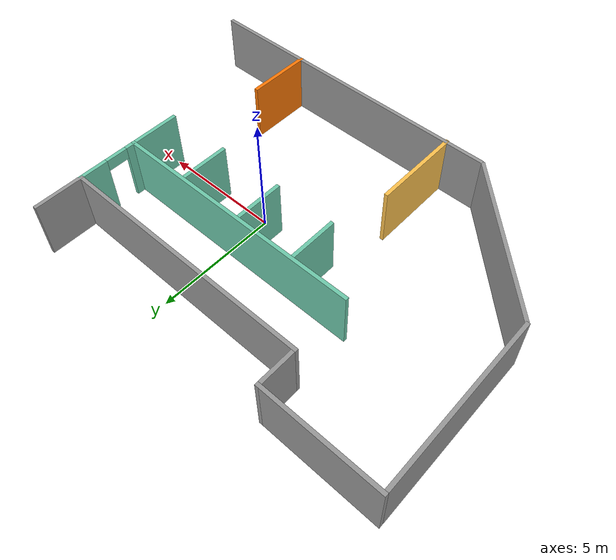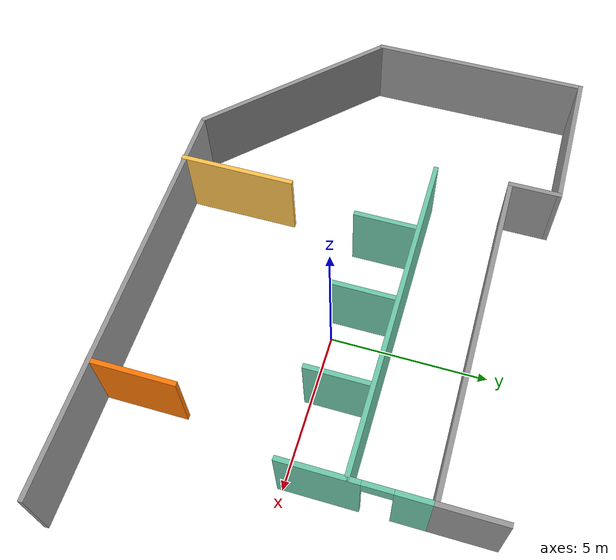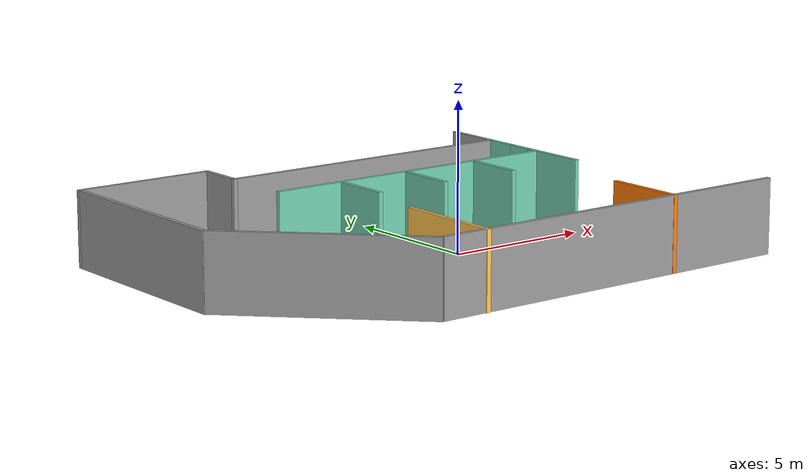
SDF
<sdf version="1.6">
 <model name="Building">
  <link name="Wall_11">
   <pose>1.2 -6.05 0 0 -0 0</pose>
   <inertial>
    <mass>1</mass>
    <inertia><ixx>1</ixx><ixy>0</ixy><ixz>0</ixz><iyy>1</iyy><iyz>0</iyz><izz>1</izz></inertia>
   </inertial>
   <visual name="Wall_11_Visual">
    <pose>0 0 1.25 0 -0 0</pose>
    <geometry><box><size>13.3 0.15 2.5</size></box></geometry>
    <material>
     <script><uri>file://media/materials/scripts/gazebo.material</uri><name>Gazebo/Grey</name></script>
     <ambient>1 1 1 1</ambient>
     <shader type="pixel"><normal_map>__default__</normal_map></shader>
     <diffuse>0.7 0.7 0.7 1</diffuse>
     <specular>0.01 0.01 0.01 1</specular>
     <emissive>0 0 0 1</emissive>
    </material>
    <meta><layer>0</layer></meta>
   </visual>
   <collision name="Wall_11_Collision">
    <pose>0 0 1.25 0 -0 0</pose>
    <geometry><box><size>13.3 0.15 2.5</size></box></geometry>
    <surface>
     <friction>
      <ode><mu>1</mu><mu2>1</mu2><fdir1>0 0 0</fdir1><slip1>0</slip1><slip2>0</slip2></ode>
      <torsional>
       <coefficient>1</coefficient>
       <patch_radius>0</patch_radius>
       <surface_radius>0</surface_radius>
       <use_patch_radius>1</use_patch_radius>
       <ode><slip>0</slip></ode>
      </torsional>
     </friction>
     <bounce><restitution_coefficient>0</restitution_coefficient><threshold>1e+06</threshold></bounce>
     <contact>
      <collide_without_contact>0</collide_without_contact>
      <collide_without_contact_bitmask>1</collide_without_contact_bitmask>
      <collide_bitmask>1</collide_bitmask>
      <ode>
       <soft_cfm>0</soft_cfm>
       <soft_erp>0.2</soft_erp>
       <kp>1e+13</kp>
       <kd>1</kd>
       <max_vel>0.01</max_vel>
       <min_depth>0</min_depth>
      </ode>
      <bullet>
       <split_impulse>1</split_impulse>
       <split_impulse_penetration_threshold>-0.01</split_impulse_penetration_threshold>
       <soft_cfm>0</soft_cfm>
       <soft_erp>0.2</soft_erp>
       <kp>1e+13</kp>
       <kd>1</kd>
      </bullet>
     </contact>
    </surface>
   </collision>
  </link>
  <link name="Wall_133">
   <pose>-3.81217 -4.27997 0 0 0 -1.5708</pose>
   <visual name="Wall_133_Visual">
    <pose>0 0 1.25 0 -0 0</pose>
    <geometry><box><size>3.75 0.15 2.5</size></box></geometry>
    <material>
     <script><uri>file://media/materials/scripts/gazebo.material</uri><name>Gazebo/Grey</name></script>
     <ambient>1 0.764706 0.305882 1</ambient>
     <shader type="pixel"/>
     <diffuse>0.7 0.7 0.7 1</diffuse>
     <specular>0.01 0.01 0.01 1</specular>
     <emissive>0 0 0 1</emissive>
    </material>
    <meta><layer>0</layer></meta>
   </visual>
   <collision name="Wall_133_Collision">
    <pose>0 0 1.25 0 -0 0</pose>
    <geometry><box><size>3.75 0.15 2.5</size></box></geometry>
    <surface>
     <friction>
      <ode><mu>1</mu><mu2>1</mu2><fdir1>0 0 0</fdir1><slip1>0</slip1><slip2>0</slip2></ode>
      <torsional>
       <coefficient>1</coefficient>
       <patch_radius>0</patch_radius>
       <surface_radius>0</surface_radius>
       <use_patch_radius>1</use_patch_radius>
       <ode><slip>0</slip></ode>
      </torsional>
     </friction>
     <bounce><restitution_coefficient>0</restitution_coefficient><threshold>1e+06</threshold></bounce>
     <contact>
      <collide_without_contact>0</collide_without_contact>
      <collide_without_contact_bitmask>1</collide_without_contact_bitmask>
      <collide_bitmask>1</collide_bitmask>
      <ode>
       <soft_cfm>0</soft_cfm>
       <soft_erp>0.2</soft_erp>
       <kp>1e+13</kp>
       <kd>1</kd>
       <max_vel>0.01</max_vel>
       <min_depth>0</min_depth>
      </ode>
      <bullet>
       <split_impulse>1</split_impulse>
       <split_impulse_penetration_threshold>-0.01</split_impulse_penetration_threshold>
       <soft_cfm>0</soft_cfm>
       <soft_erp>0.2</soft_erp>
       <kp>1e+13</kp>
       <kd>1</kd>
      </bullet>
     </contact>
    </surface>
   </collision>
  </link>
  <link name="Wall_145">
   <pose>3.67485 -4.757 0 0 0 -1.5708</pose>
   <visual name="Wall_145_Visual">
    <pose>0 0 1.25 0 -0 0</pose>
    <geometry><box><size>2.75 0.15 2.5</size></box></geometry>
    <material>
     <script><uri>file://media/materials/scripts/gazebo.material</uri><name>Gazebo/Grey</name></script>
     <ambient>0.996078 0.47451 0.0196078 1</ambient>
     <shader type="pixel"/>
     <diffuse>0.7 0.7 0.7 1</diffuse>
     <specular>0.01 0.01 0.01 1</specular>
     <emissive>0 0 0 1</emissive>
    </material>
    <meta><layer>0</layer></meta>
   </visual>
   <collision name="Wall_145_Collision">
    <pose>0 0 1.25 0 -0 0</pose>
    <geometry><box><size>2.75 0.15 2.5</size></box></geometry>
    <surface>
     <friction>
      <ode><mu>1</mu><mu2>1</mu2><fdir1>0 0 0</fdir1><slip1>0</slip1><slip2>0</slip2></ode>
      <torsional>
       <coefficient>1</coefficient>
       <patch_radius>0</patch_radius>
       <surface_radius>0</surface_radius>
       <use_patch_radius>1</use_patch_radius>
       <ode><slip>0</slip></ode>
      </torsional>
     </friction>
     <bounce><restitution_coefficient>0</restitution_coefficient><threshold>1e+06</threshold></bounce>
     <contact>
      <collide_without_contact>0</collide_without_contact>
      <collide_without_contact_bitmask>1</collide_without_contact_bitmask>
      <collide_bitmask>1</collide_bitmask>
      <ode>
       <soft_cfm>0</soft_cfm>
       <soft_erp>0.2</soft_erp>
       <kp>1e+13</kp>
       <kd>1</kd>
       <max_vel>0.01</max_vel>
       <min_depth>0</min_depth>
      </ode>
      <bullet>
       <split_impulse>1</split_impulse>
       <split_impulse_penetration_threshold>-0.01</split_impulse_penetration_threshold>
       <soft_cfm>0</soft_cfm>
       <soft_erp>0.2</soft_erp>
       <kp>1e+13</kp>
       <kd>1</kd>
      </bullet>
     </contact>
    </surface>
   </collision>
  </link>
  <link name="Wall_16">
   <pose>4.92485 5.2565 0 0 0 -1.5708</pose>
   <visual name="Wall_16_Visual">
    <pose>0 0 1.25 0 -0 0</pose>
    <geometry><box><size>2.06053 0.15 2.5</size></box></geometry>
    <material>
     <script><uri>file://media/materials/scripts/gazebo.material</uri><name>Gazebo/Grey</name></script>
     <ambient>1 1 1 1</ambient>
     <shader type="pixel"/>
     <diffuse>0.7 0.7 0.7 1</diffuse>
     <specular>0.01 0.01 0.01 1</specular>
     <emissive>0 0 0 1</emissive>
    </material>
    <meta><layer>0</layer></meta>
   </visual>
   <collision name="Wall_16_Collision">
    <pose>0 0 1.25 0 -0 0</pose>
    <geometry><box><size>2.06053 0.15 2.5</size></box></geometry>
    <surface>
     <friction>
      <ode><mu>1</mu><mu2>1</mu2><fdir1>0 0 0</fdir1><slip1>0</slip1><slip2>0</slip2></ode>
      <torsional>
       <coefficient>1</coefficient>
       <patch_radius>0</patch_radius>
       <surface_radius>0</surface_radius>
       <use_patch_radius>1</use_patch_radius>
       <ode><slip>0</slip></ode>
      </torsional>
     </friction>
     <bounce><restitution_coefficient>0</restitution_coefficient><threshold>1e+06</threshold></bounce>
     <contact>
      <collide_without_contact>0</collide_without_contact>
      <collide_without_contact_bitmask>1</collide_without_contact_bitmask>
      <collide_bitmask>1</collide_bitmask>
      <ode>
       <soft_cfm>0</soft_cfm>
       <soft_erp>0.2</soft_erp>
       <kp>1e+13</kp>
       <kd>1</kd>
       <max_vel>0.01</max_vel>
       <min_depth>0</min_depth>
      </ode>
      <bullet>
       <split_impulse>1</split_impulse>
       <split_impulse_penetration_threshold>-0.01</split_impulse_penetration_threshold>
       <soft_cfm>0</soft_cfm>
       <soft_erp>0.2</soft_erp>
       <kp>1e+13</kp>
       <kd>1</kd>
      </bullet>
     </contact>
    </surface>
   </collision>
  </link>
  <link name="Wall_17">
   <pose>-0.375154 4.301 0 0 -0 3.14159</pose>
   <visual name="Wall_17_Visual">
    <pose>0 0 1.25 0 -0 0</pose>
    <geometry><box><size>10.75 0.15 2.5</size></box></geometry>
    <material>
     <script><uri>file://media/materials/scripts/gazebo.material</uri><name>Gazebo/Grey</name></script>
     <ambient>1 1 1 1</ambient>
     <shader type="pixel"/>
     <diffuse>0.7 0.7 0.7 1</diffuse>
     <specular>0.01 0.01 0.01 1</specular>
     <emissive>0 0 0 1</emissive>
    </material>
    <meta><layer>0</layer></meta>
   </visual>
   <collision name="Wall_17_Collision">
    <pose>0 0 1.25 0 -0 0</pose>
    <geometry><box><size>10.75 0.15 2.5</size></box></geometry>
    <surface>
     <friction>
      <ode><mu>1</mu><mu2>1</mu2><fdir1>0 0 0</fdir1><slip1>0</slip1><slip2>0</slip2></ode>
      <torsional>
       <coefficient>1</coefficient>
       <patch_radius>0</patch_radius>
       <surface_radius>0</surface_radius>
       <use_patch_radius>1</use_patch_radius>
       <ode><slip>0</slip></ode>
      </torsional>
     </friction>
     <bounce><restitution_coefficient>0</restitution_coefficient><threshold>1e+06</threshold></bounce>
     <contact>
      <collide_without_contact>0</collide_without_contact>
      <collide_without_contact_bitmask>1</collide_without_contact_bitmask>
      <collide_bitmask>1</collide_bitmask>
      <ode>
       <soft_cfm>0</soft_cfm>
       <soft_erp>0.2</soft_erp>
       <kp>1e+13</kp>
       <kd>1</kd>
       <max_vel>0.01</max_vel>
       <min_depth>0</min_depth>
      </ode>
      <bullet>
       <split_impulse>1</split_impulse>
       <split_impulse_penetration_threshold>-0.01</split_impulse_penetration_threshold>
       <soft_cfm>0</soft_cfm>
       <soft_erp>0.2</soft_erp>
       <kp>1e+13</kp>
       <kd>1</kd>
      </bullet>
     </contact>
    </surface>
   </collision>
  </link>
  <link name="Wall_18">
   <pose>-5.67515 5.0855 0 0 -0 1.5708</pose>
   <visual name="Wall_18_Visual">
    <pose>0 0 1.25 0 -0 0</pose>
    <geometry><box><size>1.719 0.15 2.5</size></box></geometry>
    <material>
     <script><uri>file://media/materials/scripts/gazebo.material</uri><name>Gazebo/Grey</name></script>
     <ambient>1 1 1 1</ambient>
     <shader type="pixel"/>
     <diffuse>0.7 0.7 0.7 1</diffuse>
     <specular>0.01 0.01 0.01 1</specular>
     <emissive>0 0 0 1</emissive>
    </material>
    <meta><layer>0</layer></meta>
   </visual>
   <collision name="Wall_18_Collision">
    <pose>0 0 1.25 0 -0 0</pose>
    <geometry><box><size>1.719 0.15 2.5</size></box></geometry>
    <surface>
     <friction>
      <ode><mu>1</mu><mu2>1</mu2><fdir1>0 0 0</fdir1><slip1>0</slip1><slip2>0</slip2></ode>
      <torsional>
       <coefficient>1</coefficient>
       <patch_radius>0</patch_radius>
       <surface_radius>0</surface_radius>
       <use_patch_radius>1</use_patch_radius>
       <ode><slip>0</slip></ode>
      </torsional>
     </friction>
     <bounce><restitution_coefficient>0</restitution_coefficient><threshold>1e+06</threshold></bounce>
     <contact>
      <collide_without_contact>0</collide_without_contact>
      <collide_without_contact_bitmask>1</collide_without_contact_bitmask>
      <collide_bitmask>1</collide_bitmask>
      <ode>
       <soft_cfm>0</soft_cfm>
       <soft_erp>0.2</soft_erp>
       <kp>1e+13</kp>
       <kd>1</kd>
       <max_vel>0.01</max_vel>
       <min_depth>0</min_depth>
      </ode>
      <bullet>
       <split_impulse>1</split_impulse>
       <split_impulse_penetration_threshold>-0.01</split_impulse_penetration_threshold>
       <soft_cfm>0</soft_cfm>
       <soft_erp>0.2</soft_erp>
       <kp>1e+13</kp>
       <kd>1</kd>
      </bullet>
     </contact>
    </surface>
   </collision>
  </link>
  <link name="Wall_19">
   <pose>-8.02415 5.87 0 0 -0 3.14159</pose>
   <visual name="Wall_19_Visual">
    <pose>0 0 1.25 0 -0 0</pose>
    <geometry><box><size>4.848 0.15 2.5</size></box></geometry>
    <material>
     <script><uri>file://media/materials/scripts/gazebo.material</uri><name>Gazebo/Grey</name></script>
     <ambient>1 1 1 1</ambient>
     <shader type="pixel"/>
     <diffuse>0.7 0.7 0.7 1</diffuse>
     <specular>0.01 0.01 0.01 1</specular>
     <emissive>0 0 0 1</emissive>
    </material>
    <meta><layer>0</layer></meta>
   </visual>
   <collision name="Wall_19_Collision">
    <pose>0 0 1.25 0 -0 0</pose>
    <geometry><box><size>4.848 0.15 2.5</size></box></geometry>
    <surface>
     <friction>
      <ode><mu>1</mu><mu2>1</mu2><fdir1>0 0 0</fdir1><slip1>0</slip1><slip2>0</slip2></ode>
      <torsional>
       <coefficient>1</coefficient>
       <patch_radius>0</patch_radius>
       <surface_radius>0</surface_radius>
       <use_patch_radius>1</use_patch_radius>
       <ode><slip>0</slip></ode>
      </torsional>
     </friction>
     <bounce><restitution_coefficient>0</restitution_coefficient><threshold>1e+06</threshold></bounce>
     <contact>
      <collide_without_contact>0</collide_without_contact>
      <collide_without_contact_bitmask>1</collide_without_contact_bitmask>
      <collide_bitmask>1</collide_bitmask>
      <ode>
       <soft_cfm>0</soft_cfm>
       <soft_erp>0.2</soft_erp>
       <kp>1e+13</kp>
       <kd>1</kd>
       <max_vel>0.01</max_vel>
       <min_depth>0</min_depth>
      </ode>
      <bullet>
       <split_impulse>1</split_impulse>
       <split_impulse_penetration_threshold>-0.01</split_impulse_penetration_threshold>
       <soft_cfm>0</soft_cfm>
       <soft_erp>0.2</soft_erp>
       <kp>1e+13</kp>
       <kd>1</kd>
      </bullet>
     </contact>
    </surface>
   </collision>
  </link>
  <link name="Wall_42">
   <pose>4.92481 2.11064 0 0 0 -1.57081</pose>
   <visual name="Wall_42_Visual_0">
    <pose>-1.66328 0 1.25 0 -0 0</pose>
    <geometry><box><size>1.20417 0.15 2.5</size></box></geometry>
    <material>
     <script><uri>file://media/materials/scripts/gazebo.material</uri><name>Gazebo/Grey</name></script>
     <ambient>0.435294 0.796078 0.67451 1</ambient>
     <shader type="pixel"/>
     <diffuse>0.7 0.7 0.7 1</diffuse>
     <specular>0.01 0.01 0.01 1</specular>
     <emissive>0 0 0 1</emissive>
    </material>
    <meta><layer>0</layer></meta>
   </visual>
   <visual name="Wall_42_Visual_1">
    <pose>1.05208 0 1.25 0 -0 0</pose>
    <geometry><box><size>2.42655 0.15 2.5</size></box></geometry>
    <material>
     <script><uri>file://media/materials/scripts/gazebo.material</uri><name>Gazebo/Grey</name></script>
     <ambient>0.435294 0.796078 0.67451 1</ambient>
     <shader type="pixel"/>
     <diffuse>0.7 0.7 0.7 1</diffuse>
     <specular>0.01 0.01 0.01 1</specular>
     <emissive>0 0 0 1</emissive>
    </material>
    <meta><layer>0</layer></meta>
   </visual>
   <visual name="Wall_42_Visual_2">
    <pose>-0.611192 0 2.25 0 -0 0</pose>
    <geometry><box><size>0.9 0.15 0.5</size></box></geometry>
    <material>
     <script><uri>file://media/materials/scripts/gazebo.material</uri><name>Gazebo/Grey</name></script>
     <ambient>0.435294 0.796078 0.67451 1</ambient>
     <shader type="pixel"/>
     <diffuse>0.7 0.7 0.7 1</diffuse>
     <specular>0.01 0.01 0.01 1</specular>
     <emissive>0 0 0 1</emissive>
    </material>
    <meta><layer>0</layer></meta>
   </visual>
   <collision name="Wall_42_Collision_0">
    <pose>-1.66328 0 1.25 0 -0 0</pose>
    <geometry><box><size>1.20417 0.15 2.5</size></box></geometry>
    <surface>
     <friction>
      <ode><mu>1</mu><mu2>1</mu2><fdir1>0 0 0</fdir1><slip1>0</slip1><slip2>0</slip2></ode>
      <torsional>
       <coefficient>1</coefficient>
       <patch_radius>0</patch_radius>
       <surface_radius>0</surface_radius>
       <use_patch_radius>1</use_patch_radius>
       <ode><slip>0</slip></ode>
      </torsional>
     </friction>
     <bounce><restitution_coefficient>0</restitution_coefficient><threshold>1e+06</threshold></bounce>
     <contact>
      <collide_without_contact>0</collide_without_contact>
      <collide_without_contact_bitmask>1</collide_without_contact_bitmask>
      <collide_bitmask>1</collide_bitmask>
      <ode>
       <soft_cfm>0</soft_cfm>
       <soft_erp>0.2</soft_erp>
       <kp>1e+13</kp>
       <kd>1</kd>
       <max_vel>0.01</max_vel>
       <min_depth>0</min_depth>
      </ode>
      <bullet>
       <split_impulse>1</split_impulse>
       <split_impulse_penetration_threshold>-0.01</split_impulse_penetration_threshold>
       <soft_cfm>0</soft_cfm>
       <soft_erp>0.2</soft_erp>
       <kp>1e+13</kp>
       <kd>1</kd>
      </bullet>
     </contact>
    </surface>
   </collision>
   <collision name="Wall_42_Collision_1">
    <pose>1.05208 0 1.25 0 -0 0</pose>
    <geometry><box><size>2.42655 0.15 2.5</size></box></geometry>
    <surface>
     <friction>
      <ode><mu>1</mu><mu2>1</mu2><fdir1>0 0 0</fdir1><slip1>0</slip1><slip2>0</slip2></ode>
      <torsional>
       <coefficient>1</coefficient>
       <patch_radius>0</patch_radius>
       <surface_radius>0</surface_radius>
       <use_patch_radius>1</use_patch_radius>
       <ode><slip>0</slip></ode>
      </torsional>
     </friction>
     <bounce><restitution_coefficient>0</restitution_coefficient><threshold>1e+06</threshold></bounce>
     <contact>
      <collide_without_contact>0</collide_without_contact>
      <collide_without_contact_bitmask>1</collide_without_contact_bitmask>
      <collide_bitmask>1</collide_bitmask>
      <ode>
       <soft_cfm>0</soft_cfm>
       <soft_erp>0.2</soft_erp>
       <kp>1e+13</kp>
       <kd>1</kd>
       <max_vel>0.01</max_vel>
       <min_depth>0</min_depth>
      </ode>
      <bullet>
       <split_impulse>1</split_impulse>
       <split_impulse_penetration_threshold>-0.01</split_impulse_penetration_threshold>
       <soft_cfm>0</soft_cfm>
       <soft_erp>0.2</soft_erp>
       <kp>1e+13</kp>
       <kd>1</kd>
      </bullet>
     </contact>
    </surface>
   </collision>
   <collision name="Wall_42_Collision_2">
    <pose>-0.611192 0 2.25 0 -0 0</pose>
    <geometry><box><size>0.9 0.15 0.5</size></box></geometry>
    <surface>
     <friction>
      <ode><mu>1</mu><mu2>1</mu2><fdir1>0 0 0</fdir1><slip1>0</slip1><slip2>0</slip2></ode>
      <torsional>
       <coefficient>1</coefficient>
       <patch_radius>0</patch_radius>
       <surface_radius>0</surface_radius>
       <use_patch_radius>1</use_patch_radius>
       <ode><slip>0</slip></ode>
      </torsional>
     </friction>
     <bounce><restitution_coefficient>0</restitution_coefficient><threshold>1e+06</threshold></bounce>
     <contact>
      <collide_without_contact>0</collide_without_contact>
      <collide_without_contact_bitmask>1</collide_without_contact_bitmask>
      <collide_bitmask>1</collide_bitmask>
      <ode>
       <soft_cfm>0</soft_cfm>
       <soft_erp>0.2</soft_erp>
       <kp>1e+13</kp>
       <kd>1</kd>
       <max_vel>0.01</max_vel>
       <min_depth>0</min_depth>
      </ode>
      <bullet>
       <split_impulse>1</split_impulse>
       <split_impulse_penetration_threshold>-0.01</split_impulse_penetration_threshold>
       <soft_cfm>0</soft_cfm>
       <soft_erp>0.2</soft_erp>
       <kp>1e+13</kp>
       <kd>1</kd>
      </bullet>
     </contact>
    </surface>
   </collision>
  </link>
  <link name="Wall_44">
   <pose>-0.339154 1.876 0 0 -0 0</pose>
   <visual name="Wall_44_Visual">
    <pose>0 0 1.25 0 -0 0</pose>
    <geometry><box><size>10.67 0.15 2.5</size></box></geometry>
    <material>
     <script><uri>file://media/materials/scripts/gazebo.material</uri><name>Gazebo/Grey</name></script>
     <ambient>0.435294 0.796078 0.67451 1</ambient>
     <shader type="pixel"/>
     <diffuse>0.7 0.7 0.7 1</diffuse>
     <specular>0.01 0.01 0.01 1</specular>
     <emissive>0 0 0 1</emissive>
    </material>
    <meta><layer>0</layer></meta>
   </visual>
   <collision name="Wall_44_Collision">
    <pose>0 0 1.25 0 -0 0</pose>
    <geometry><box><size>10.67 0.15 2.5</size></box></geometry>
    <surface>
     <friction>
      <ode><mu>1</mu><mu2>1</mu2><fdir1>0 0 0</fdir1><slip1>0</slip1><slip2>0</slip2></ode>
      <torsional>
       <coefficient>1</coefficient>
       <patch_radius>0</patch_radius>
       <surface_radius>0</surface_radius>
       <use_patch_radius>1</use_patch_radius>
       <ode><slip>0</slip></ode>
      </torsional>
     </friction>
     <bounce><restitution_coefficient>0</restitution_coefficient><threshold>1e+06</threshold></bounce>
     <contact>
      <collide_without_contact>0</collide_without_contact>
      <collide_without_contact_bitmask>1</collide_without_contact_bitmask>
      <collide_bitmask>1</collide_bitmask>
      <ode>
       <soft_cfm>0</soft_cfm>
       <soft_erp>0.2</soft_erp>
       <kp>1e+13</kp>
       <kd>1</kd>
       <max_vel>0.01</max_vel>
       <min_depth>0</min_depth>
      </ode>
      <bullet>
       <split_impulse>1</split_impulse>
       <split_impulse_penetration_threshold>-0.01</split_impulse_penetration_threshold>
       <soft_cfm>0</soft_cfm>
       <soft_erp>0.2</soft_erp>
       <kp>1e+13</kp>
       <kd>1</kd>
      </bullet>
     </contact>
    </surface>
   </collision>
  </link>
  <link name="Wall_46">
   <pose>-3.23215 0.802004 0 0 -0 1.5708</pose>
   <visual name="Wall_46_Visual">
    <pose>0 0 1.25 0 -0 0</pose>
    <geometry><box><size>2 0.15 2.5</size></box></geometry>
    <material>
     <script><uri>file://media/materials/scripts/gazebo.material</uri><name>Gazebo/Grey</name></script>
     <ambient>0.435294 0.796078 0.67451 1</ambient>
     <shader type="pixel"/>
     <diffuse>0.7 0.7 0.7 1</diffuse>
     <specular>0.01 0.01 0.01 1</specular>
     <emissive>0 0 0 1</emissive>
    </material>
    <meta><layer>0</layer></meta>
   </visual>
   <collision name="Wall_46_Collision">
    <pose>0 0 1.25 0 -0 0</pose>
    <geometry><box><size>2 0.15 2.5</size></box></geometry>
    <surface>
     <friction>
      <ode><mu>1</mu><mu2>1</mu2><fdir1>0 0 0</fdir1><slip1>0</slip1><slip2>0</slip2></ode>
      <torsional>
       <coefficient>1</coefficient>
       <patch_radius>0</patch_radius>
       <surface_radius>0</surface_radius>
       <use_patch_radius>1</use_patch_radius>
       <ode><slip>0</slip></ode>
      </torsional>
     </friction>
     <bounce><restitution_coefficient>0</restitution_coefficient><threshold>1e+06</threshold></bounce>
     <contact>
      <collide_without_contact>0</collide_without_contact>
      <collide_without_contact_bitmask>1</collide_without_contact_bitmask>
      <collide_bitmask>1</collide_bitmask>
      <ode>
       <soft_cfm>0</soft_cfm>
       <soft_erp>0.2</soft_erp>
       <kp>1e+13</kp>
       <kd>1</kd>
       <max_vel>0.01</max_vel>
       <min_depth>0</min_depth>
      </ode>
      <bullet>
       <split_impulse>1</split_impulse>
       <split_impulse_penetration_threshold>-0.01</split_impulse_penetration_threshold>
       <soft_cfm>0</soft_cfm>
       <soft_erp>0.2</soft_erp>
       <kp>1e+13</kp>
       <kd>1</kd>
      </bullet>
     </contact>
    </surface>
   </collision>
  </link>
  <link name="Wall_48">
   <pose>-0.652154 0.802004 0 0 -0 1.5708</pose>
   <visual name="Wall_48_Visual">
    <pose>0 0 1.25 0 -0 0</pose>
    <geometry><box><size>2 0.15 2.5</size></box></geometry>
    <material>
     <script><uri>file://media/materials/scripts/gazebo.material</uri><name>Gazebo/Grey</name></script>
     <ambient>0.435294 0.796078 0.67451 1</ambient>
     <shader type="pixel"/>
     <diffuse>0.7 0.7 0.7 1</diffuse>
     <specular>0.01 0.01 0.01 1</specular>
     <emissive>0 0 0 1</emissive>
    </material>
    <meta><layer>0</layer></meta>
   </visual>
   <collision name="Wall_48_Collision">
    <pose>0 0 1.25 0 -0 0</pose>
    <geometry><box><size>2 0.15 2.5</size></box></geometry>
    <surface>
     <friction>
      <ode><mu>1</mu><mu2>1</mu2><fdir1>0 0 0</fdir1><slip1>0</slip1><slip2>0</slip2></ode>
      <torsional>
       <coefficient>1</coefficient>
       <patch_radius>0</patch_radius>
       <surface_radius>0</surface_radius>
       <use_patch_radius>1</use_patch_radius>
       <ode><slip>0</slip></ode>
      </torsional>
     </friction>
     <bounce><restitution_coefficient>0</restitution_coefficient><threshold>1e+06</threshold></bounce>
     <contact>
      <collide_without_contact>0</collide_without_contact>
      <collide_without_contact_bitmask>1</collide_without_contact_bitmask>
      <collide_bitmask>1</collide_bitmask>
      <ode>
       <soft_cfm>0</soft_cfm>
       <soft_erp>0.2</soft_erp>
       <kp>1e+13</kp>
       <kd>1</kd>
       <max_vel>0.01</max_vel>
       <min_depth>0</min_depth>
      </ode>
      <bullet>
       <split_impulse>1</split_impulse>
       <split_impulse_penetration_threshold>-0.01</split_impulse_penetration_threshold>
       <soft_cfm>0</soft_cfm>
       <soft_erp>0.2</soft_erp>
       <kp>1e+13</kp>
       <kd>1</kd>
      </bullet>
     </contact>
    </surface>
   </collision>
  </link>
  <link name="Wall_50">
   <pose>2.16791 0.805908 0 0 -0 1.5708</pose>
   <visual name="Wall_50_Visual">
    <pose>0 0 1.25 0 -0 0</pose>
    <geometry><box><size>2 0.15 2.5</size></box></geometry>
    <material>
     <script><uri>file://media/materials/scripts/gazebo.material</uri><name>Gazebo/Grey</name></script>
     <ambient>0.435294 0.796078 0.67451 1</ambient>
     <shader type="pixel"/>
     <diffuse>0.7 0.7 0.7 1</diffuse>
     <specular>0.01 0.01 0.01 1</specular>
     <emissive>0 0 0 1</emissive>
    </material>
    <meta><layer>0</layer></meta>
   </visual>
   <collision name="Wall_50_Collision">
    <pose>0 0 1.25 0 -0 0</pose>
    <geometry><box><size>2 0.15 2.5</size></box></geometry>
    <surface>
     <friction>
      <ode><mu>1</mu><mu2>1</mu2><fdir1>0 0 0</fdir1><slip1>0</slip1><slip2>0</slip2></ode>
      <torsional>
       <coefficient>1</coefficient>
       <patch_radius>0</patch_radius>
       <surface_radius>0</surface_radius>
       <use_patch_radius>1</use_patch_radius>
       <ode><slip>0</slip></ode>
      </torsional>
     </friction>
     <bounce><restitution_coefficient>0</restitution_coefficient><threshold>1e+06</threshold></bounce>
     <contact>
      <collide_without_contact>0</collide_without_contact>
      <collide_without_contact_bitmask>1</collide_without_contact_bitmask>
      <collide_bitmask>1</collide_bitmask>
      <ode>
       <soft_cfm>0</soft_cfm>
       <soft_erp>0.2</soft_erp>
       <kp>1e+13</kp>
       <kd>1</kd>
       <max_vel>0.01</max_vel>
       <min_depth>0</min_depth>
      </ode>
      <bullet>
       <split_impulse>1</split_impulse>
       <split_impulse_penetration_threshold>-0.01</split_impulse_penetration_threshold>
       <soft_cfm>0</soft_cfm>
       <soft_erp>0.2</soft_erp>
       <kp>1e+13</kp>
       <kd>1</kd>
      </bullet>
     </contact>
    </surface>
   </collision>
  </link>
  <link name="Wall_6">
   <pose>-10.3752 2.29528 0 0 0 -1.5708</pose>
   <visual name="Wall_6_Visual">
    <pose>0 0 1.25 0 -0 0</pose>
    <geometry><box><size>7 0.15 2.5</size></box></geometry>
    <material>
     <script><uri>file://media/materials/scripts/gazebo.material</uri><name>Gazebo/Grey</name></script>
     <ambient>1 1 1 1</ambient>
     <shader type="pixel"/>
     <diffuse>0.7 0.7 0.7 1</diffuse>
     <specular>0.01 0.01 0.01 1</specular>
     <emissive>0 0 0 1</emissive>
    </material>
    <meta><layer>0</layer></meta>
   </visual>
   <collision name="Wall_6_Collision">
    <pose>0 0 1.25 0 -0 0</pose>
    <geometry><box><size>7 0.15 2.5</size></box></geometry>
    <surface>
     <friction>
      <ode><mu>1</mu><mu2>1</mu2><fdir1>0 0 0</fdir1><slip1>0</slip1><slip2>0</slip2></ode>
      <torsional>
       <coefficient>1</coefficient>
       <patch_radius>0</patch_radius>
       <surface_radius>0</surface_radius>
       <use_patch_radius>1</use_patch_radius>
       <ode><slip>0</slip></ode>
      </torsional>
     </friction>
     <bounce><restitution_coefficient>0</restitution_coefficient><threshold>1e+06</threshold></bounce>
     <contact>
      <collide_without_contact>0</collide_without_contact>
      <collide_without_contact_bitmask>1</collide_without_contact_bitmask>
      <collide_bitmask>1</collide_bitmask>
      <ode>
       <soft_cfm>0</soft_cfm>
       <soft_erp>0.2</soft_erp>
       <kp>1e+13</kp>
       <kd>1</kd>
       <max_vel>0.01</max_vel>
       <min_depth>0</min_depth>
      </ode>
      <bullet>
       <split_impulse>1</split_impulse>
       <split_impulse_penetration_threshold>-0.01</split_impulse_penetration_threshold>
       <soft_cfm>0</soft_cfm>
       <soft_erp>0.2</soft_erp>
       <kp>1e+13</kp>
       <kd>1</kd>
      </bullet>
     </contact>
    </surface>
   </collision>
  </link>
  <link name="Wall_7">
   <pose>-7.92 -3.6 0 0 0 -0.785</pose>
   <inertial>
    <mass>1</mass>
    <inertia><ixx>1</ixx><ixy>0</ixy><ixz>0</ixz><iyy>1</iyy><iyz>0</iyz><izz>1</izz></inertia>
   </inertial>
   <visual name="Wall_7_Visual">
    <pose>0 0 1.25 0 -0 0</pose>
    <geometry><box><size>7 0.15 2.5</size></box></geometry>
    <material>
     <script><uri>file://media/materials/scripts/gazebo.material</uri><name>Gazebo/Grey</name></script>
     <ambient>1 1 1 1</ambient>
     <shader type="pixel"><normal_map>__default__</normal_map></shader>
     <diffuse>0.7 0.7 0.7 1</diffuse>
     <specular>0.01 0.01 0.01 1</specular>
     <emissive>0 0 0 1</emissive>
    </material>
    <meta><layer>0</layer></meta>
   </visual>
   <collision name="Wall_7_Collision">
    <pose>0 0 1.25 0 -0 0</pose>
    <geometry><box><size>7 0.15 2.5</size></box></geometry>
    <surface>
     <friction>
      <ode><mu>1</mu><mu2>1</mu2><fdir1>0 0 0</fdir1><slip1>0</slip1><slip2>0</slip2></ode>
      <torsional>
       <coefficient>1</coefficient>
       <patch_radius>0</patch_radius>
       <surface_radius>0</surface_radius>
       <use_patch_radius>1</use_patch_radius>
       <ode><slip>0</slip></ode>
      </torsional>
     </friction>
     <bounce><restitution_coefficient>0</restitution_coefficient><threshold>1e+06</threshold></bounce>
     <contact>
      <collide_without_contact>0</collide_without_contact>
      <collide_without_contact_bitmask>1</collide_without_contact_bitmask>
      <collide_bitmask>1</collide_bitmask>
      <ode>
       <soft_cfm>0</soft_cfm>
       <soft_erp>0.2</soft_erp>
       <kp>1e+13</kp>
       <kd>1</kd>
       <max_vel>0.01</max_vel>
       <min_depth>0</min_depth>
      </ode>
      <bullet>
       <split_impulse>1</split_impulse>
       <split_impulse_penetration_threshold>-0.01</split_impulse_penetration_threshold>
       <soft_cfm>0</soft_cfm>
       <soft_erp>0.2</soft_erp>
       <kp>1e+13</kp>
       <kd>1</kd>
      </bullet>
     </contact>
    </surface>
   </collision>
  </link>
  <static>1</static>
 </model>
</sdf>
